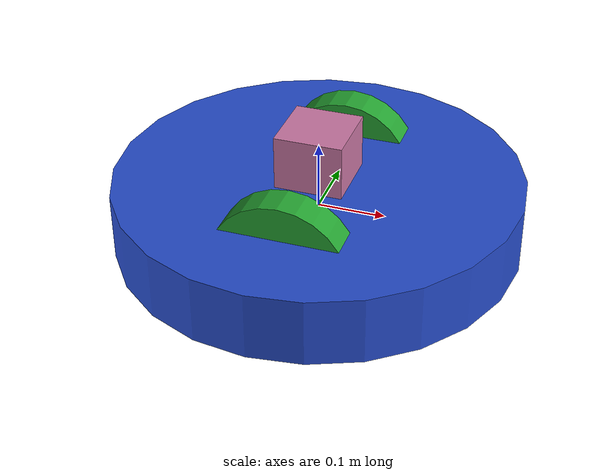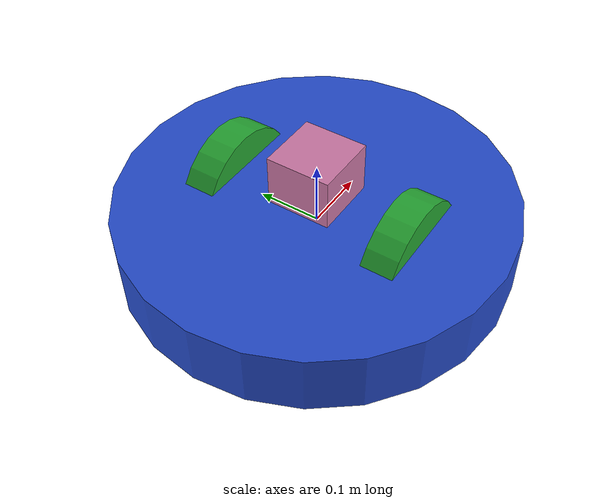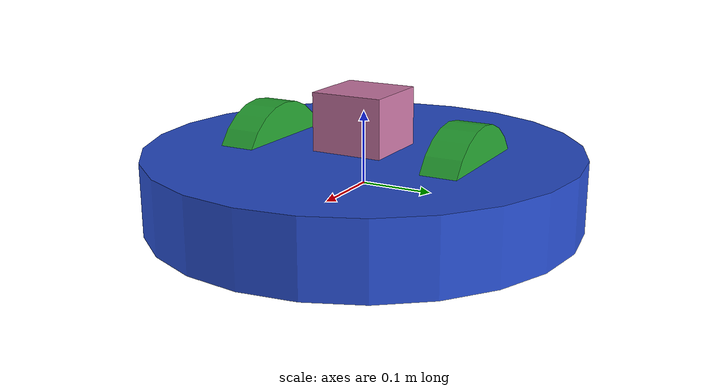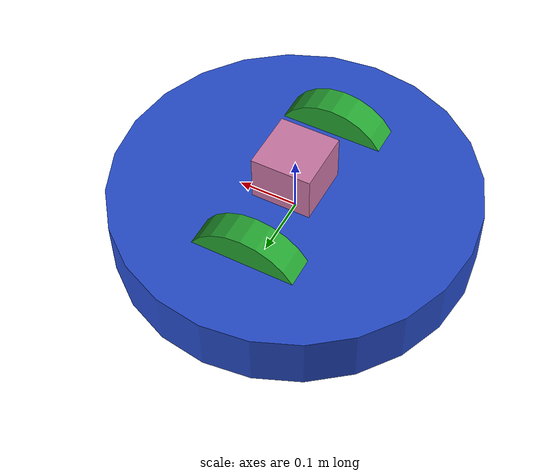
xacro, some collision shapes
<?xml version='1.0'?>

<robot name="mobile_robot" xmlns:xacro="http://www.ros.org/wiki/xacro">

  <link name="robot_footprint"></link>
  <link name="base_link"></link>
  <xacro:include filename="$(find mobile_robot)/urdf/mobile_robot.gazebo" />

  <joint name="robot_base__joint" type="fixed">
    <origin xyz="0 0 0" rpy="0 0 0" />
    <parent link="robot_footprint"/>
    <child link="base_link" />
  </joint>
  <joint name="robot_footprint_joint" type="fixed">
    <origin xyz="0 0 0" rpy="0 0 0" />
    <parent link="base_link"/>
    <child link="chassis" />
  </joint>
  <link name='chassis'>
    <pose>0 0 0.1 0 0 0</pose>

    <inertial>
      <mass value="15.0"/>
      <origin xyz="0.0 0 0" rpy=" 0 0 0"/>
      <inertia
          ixx="0.1" ixy="0" ixz="0"
          iyy="0.1" iyz="0"
          izz="0.1"
      />
    </inertial>

  <collision name='collision'>
  <origin xyz="0 0 0" rpy=" 0 0 0"/>
  <geometry>
    <cylinder length="0.1" radius="0.6"/>
  </geometry>
  </collision>

  <visual name='chassis_visual'>
    <origin xyz="0 0 0" rpy=" 0 0 0"/>
    <geometry>
      <cylinder length="0.1" radius="0.3"/>
    </geometry>
  </visual>

    <collision name='back_caster_collision'>
      <origin xyz="-0.15 0 -0.05" rpy=" 0 0 0"/>
      <geometry>
        <sphere radius="0.0499"/>
      </geometry>
    </collision>

    <visual name='back_caster_visual'>
      <origin xyz="-0.15 0 -0.05" rpy=" 0 0 0"/>
      <geometry>
        <sphere radius="0.05"/>
      </geometry>
    </visual>

    <collision name='front_caster_collision'>
      <origin xyz="0.15 0 -0.05" rpy=" 0 0 0"/>
      <geometry>
        <sphere radius="0.0499"/>
      </geometry>
    </collision>

    <visual name='front_caster_visual'>
      <origin xyz="0.15 0 -0.05" rpy=" 0 0 0"/>
      <geometry>
        <sphere radius="0.05"/>
      </geometry>
    </visual>

  </link>

  <link name='right_wheel'>
    <inertial>
      <mass value="5.0"/>
      <origin xyz="0 0 0" rpy="0 1.5707 1.5707"/>
      <inertia
          ixx="0.1" ixy="0" ixz="0"
          iyy="0.1" iyz="0"
          izz="0.1"
      />
    </inertial>

    <collision name='right_wheel_collision'>
      <origin xyz="0 0 0" rpy="0 1.5707 1.5707"/>
      <geometry>
        <cylinder length=".05" radius="0.1"/>
      </geometry>
    </collision>

    <visual name='right_wheel_visual'>
      <origin xyz="0 0 0" rpy="0 1.5707 1.5707"/>
      <geometry>
        <cylinder length=".05" radius="0.1"/>
      </geometry>
    </visual>
  </link>

  <joint type="continuous" name="right_wheel_hinge">
    <origin xyz="0 -0.15 0" rpy="0 0 0"/>
    <child link="right_wheel"/>
    <parent link="chassis"/>
    <axis xyz="0 1 0" rpy="0 0 0"/>
    <limit effort="10000" velocity="1000"/>
    <dynamics damping="1.0" friction="1.0"/>
  </joint>

  <link name='left_wheel'>
    <inertial>
      <mass value="5.0"/>
      <origin xyz="0 0 0" rpy="0 1.5707 1.5707"/>
      <inertia
          ixx="0.1" ixy="0" ixz="0"
          iyy="0.1" iyz="0"
          izz="0.1"
      />
    </inertial>

    <collision name='left_wheel_collision'>
      <origin xyz="0 0 0" rpy="0 1.5707 1.5707"/>
      <geometry>
        <cylinder length=".05" radius="0.1"/>
      </geometry>
    </collision>

    <visual name='left_wheel_visual'>
      <origin xyz="0 0 0" rpy="0 1.5707 1.5707"/>
      <geometry>
        <cylinder length=".05" radius="0.1"/>
      </geometry>
    </visual>
  </link>

  <joint type="continuous" name="left_wheel_hinge">
    <origin xyz="0 0.15 0" rpy="0 0 0"/>
    <child link="left_wheel"/>
    <parent link="chassis"/>
    <axis xyz="0 1 0" rpy="0 0 0"/>
    <limit effort="10000" velocity="1000"/>
    <dynamics damping="1.0" friction="1.0"/>
  </joint>

  <link name='camera'>
    <inertial>
      <mass value=".1"/>
      <origin xyz="0 0 0" rpy="0 0 0"/>
      <inertia
          ixx="1e-6" ixy="0" ixz="0"
          iyy="1e-6" iyz="0"
          izz="1e-6"
      />
    </inertial>

    <collision name='camera_collision'>
      <origin xyz="0 0 0" rpy="0 0 0"/>
      <geometry>
        <box size=".05 .05 .05"/>
      </geometry>
    </collision>

    <visual name='camera_visual'>
      <origin xyz="0 0 0" rpy="0 0 0"/>
      <geometry>
        <box size=".05 .05 .05"/>
      </geometry>
    </visual>
  </link>

  <joint name="camera_joint" type="fixed">
    <origin xyz=".225 0 0" rpy="0 0 0"/>
    <child link="camera"/>
    <parent link="chassis"/>
    <axis xyz="0 1 0" rpy="0 0 0"/>
  </joint>

  <link name='hokuyo'>
    <inertial>
      <mass value="1e-5"/>
      <origin xyz="0 0 0" rpy="0 0 0"/>
      <inertia
          ixx="1e-6" ixy="0" ixz="0"
          iyy="1e-6" iyz="0"
          izz="1e-6"
      />
    </inertial>

    <collision name='hokuyo_collision'>
      <origin xyz="0 0 0" rpy="0 0 0"/>
      <geometry>
        <box size=".1 .1 .1"/>
      </geometry>
    </collision>

    <visual name='hokuyo_visual'>
      <origin xyz="0 0 0" rpy="0 0 0"/>
      <geometry>
        <mesh filename = "package://mobile_robot/meshes/hokuyo.dae"/>
      </geometry>
    </visual>
  </link>

  <joint name="hokuyo_joint" type="fixed">
    <origin xyz="0 0 0.08" rpy="0 0 0"/>
    <child link="hokuyo"/>
    <parent link="chassis"/>
    <axis xyz="0 1 0" rpy="0 0 0"/>
  </joint>
<link name='laser'>
</link>
 <joint name="laser_joint" type="fixed">
    <origin xyz="0 0 0" rpy="0 0 3.140"/>
    <child link="laser"/>
    <parent link="hokuyo"/>
    <axis xyz="0 1 0" rpy="0 0 0"/>
  </joint>

  <gazebo reference="chassis">
    <material>Gazebo/Blue</material>
  </gazebo>
  <gazebo reference="left_wheel">
    <material>Gazebo/Green</material>
  </gazebo>
  <gazebo reference="right_wheel">
    <material>Gazebo/Green</material>
  </gazebo>
  <gazebo reference="camera">
    <material>Gazebo/Red</material>
  </gazebo>

</robot>
